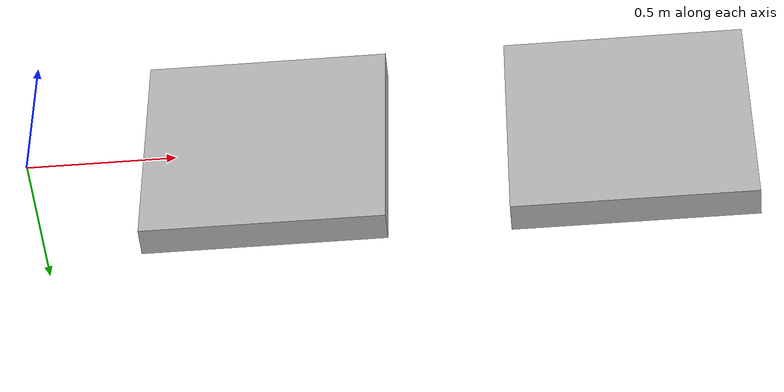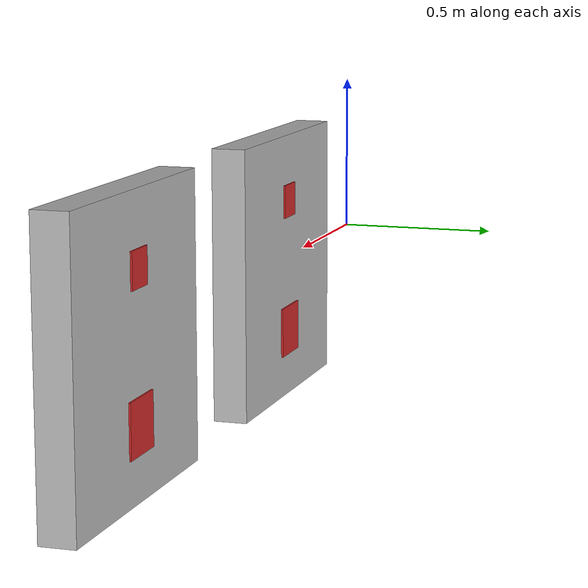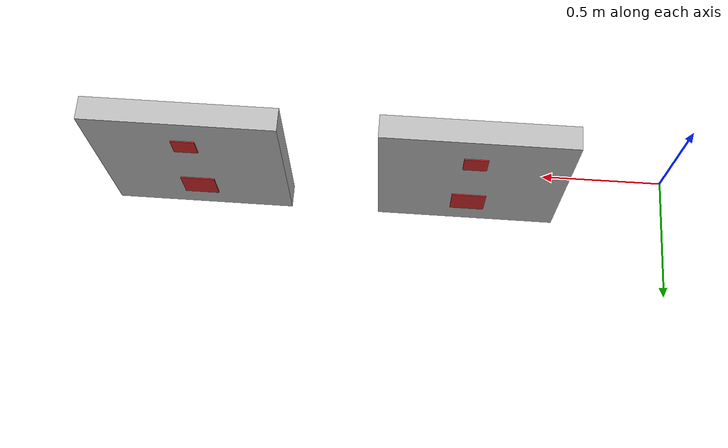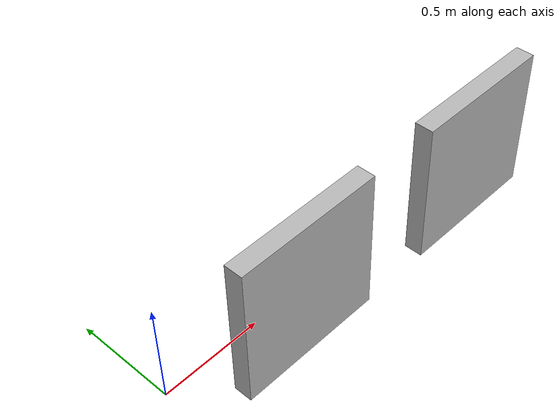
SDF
<?xml version='1.0'?>
<sdf version='1.5'>

  <model name='torpedo_targets'>
    <pose>0 0 0 0 0 0</pose>
    <self_collide> 0 </self_collide>
    <static> 1</static>

    <link name='target_gman'>
      <pose>0.8 0 0 0 0 0</pose>
      <visual name='target_gman'>
        <geometry>
          <box><size>0.8 0.1 0.8</size></box>
        </geometry>
        <material>
            <script>
            <uri>model://2018/torpedo_targets/materials/scripts</uri>
            <uri>model://2018/torpedo_targets/materials/textures</uri>
            <name>TexturedShape/gman</name>
          </script>
        </material>
      </visual>
      <collision name='target_gman_collide'>
        <geometry>
          <box><size>0.8 0.1 0.8</size></box>
        </geometry>
      </collision>
    </link>
    <link name='gman_headshot'>
      <pose>0.8 0.05 0.2 0 0 0</pose>
      <visual name='gman_headshot'>
        <geometry>
          <box><size>0.1 0.01 0.1</size></box>
        </geometry>
        <material>
            <script>
            <uri>file://media/materials/scripts/gazebo.material</uri>
            <name>Gazebo/Red</name>
          </script>
        </material>
      </visual>
    </link>

    <link name='gman_bodyshot'>
      <pose>0.8 0.05 -0.2 0 0 0</pose>
      <visual name='gman_bodyshot'>
        <geometry>
          <box><size>0.15 0.01 0.15</size></box>
        </geometry>
        <material>
            <script>
            <uri>file://media/materials/scripts/gazebo.material</uri>
            <name>Gazebo/Red</name>
          </script>
        </material>
      </visual>
    </link>

    <link name='target_bootlegger'>
      <pose>2 0 0 0 0 0</pose>
      <visual name='target_bootlegger'>
        <geometry>
          <box><size>0.8 0.1 0.8</size></box>
        </geometry>
        <material>
            <script>
            <uri>model://2018/torpedo_targets/materials/scripts</uri>
            <uri>model://2018/torpedo_targets/materials/textures</uri>
            <name>TexturedShape/bootlegger</name>
          </script>
        </material>
      </visual>
      <collision name='target_bootlegger_collide'>
        <geometry>
          <box><size>0.8 0.1 0.8</size></box>
        </geometry>
      </collision>
    </link>

    <link name='bootlegger_headshot'>
      <pose>2 0.05 0.2 0 0 0</pose>
      <visual name='bootlegger_headshot'>
        <geometry>
          <box><size>0.1 0.01 0.1</size></box>
        </geometry>
        <material>
            <script>
            <uri>file://media/materials/scripts/gazebo.material</uri>
            <name>Gazebo/Red</name>
          </script>
        </material>
      </visual>
    </link>

    <link name='bootlegger_bodyshot'>
      <pose>2 0.05 -0.2 0 0 0</pose>
      <visual name='bootlegger_bodyshot'>
        <geometry>
          <box><size>0.15 0.01 0.15</size></box>
        </geometry>
        <material>
            <script>
            <uri>file://media/materials/scripts/gazebo.material</uri>
            <name>Gazebo/Red</name>
          </script>
        </material>
      </visual>
    </link>

  </model>
</sdf>
